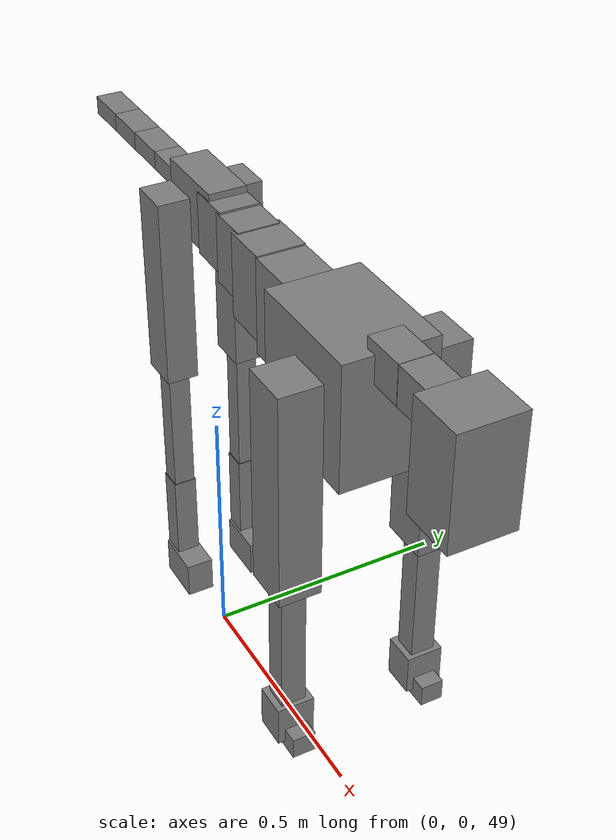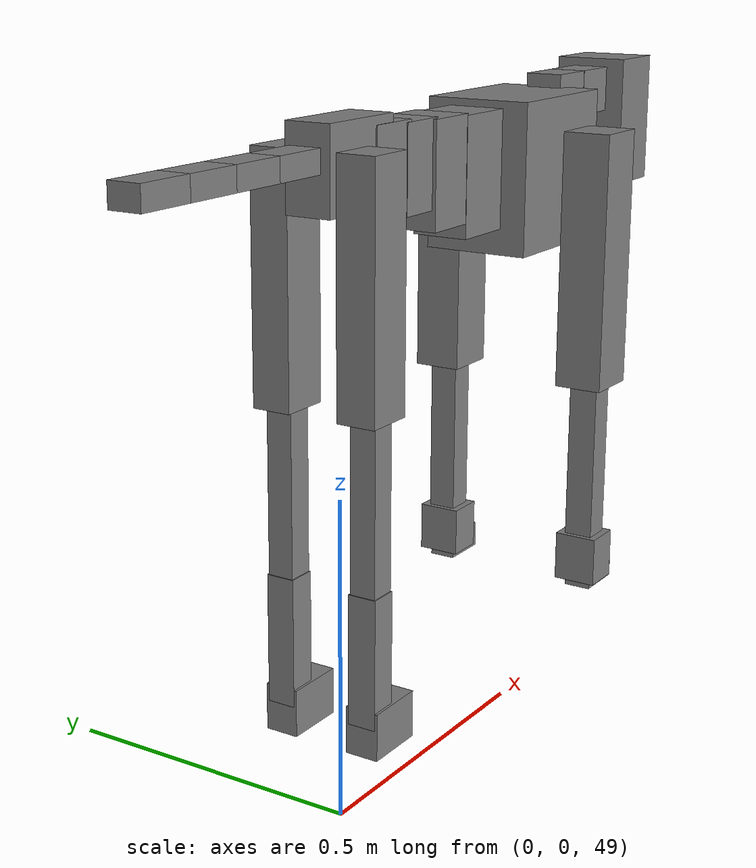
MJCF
<mujoco model="dog">

    <default>
        <joint armature="0.02" stiffness="1" damping="0.2" limited="true"/>
        <geom condim="3" friction="1 0.05 0.05" margin="0.01"/>
        <motor ctrllimited="true" ctrlrange="-1.0 1.0" forcelimited="true" gear="50"/>
    </default>

    <compiler inertiafromgeom="true" angle="radian"/>

    <option timestep="0.016" iterations="50" tolerance="1e-10" solver="Newton" jacobian="dense" cone="pyramidal"/>

    <size nconmax="20000" njmax="60000" nstack="5000000"/>
    <visual>
        <map force="0.1" zfar="30"/>
        <rgba haze="0.15 0.25 0.35 1"/>
        <quality shadowsize="2048"/>
        <global offwidth="800" offheight="800"/>
    </visual>

    <asset>
        <texture type="skybox" builtin="gradient" rgb1="0.3 0.5 0.7" rgb2="0 0 0" width="512" height="512"/>
        <texture name="texplane" type="2d" builtin="checker" rgb1=".2 .3 .4" rgb2=".1 0.15 0.2" width="512" height="512"
                 mark="cross" markrgb=".8 .8 .8"/>
        <texture name="texgeom" type="cube" builtin="flat" mark="cross" width="127" height="1278" rgb1="0.8 0.6 0.4"
                 rgb2="0.8 0.6 0.4" markrgb="1 1 1" random="0.01"/>

        <material name="matplane" reflectance="0.3" texture="texplane" texrepeat="1 1" texuniform="true"/>
        <material name="matgeom" texture="texgeom" texuniform="true" rgba="0.8 0.6 .4 1"/>
    </asset>

    <worldbody>
        <geom name="floor" pos="0 0 0" size="0 0 .25" type="plane" material="matplane" condim="3"/>

        <light directional="false" diffuse=".2 .2 .2" specular="0 0 0" pos="0 0 5" dir="0 0 -1" castshadow="false"/>
        <light mode="targetbodycom" target="torso" directional="false" diffuse=".8 .8 .8" specular="0.3 0.3 0.3"
               pos="0 0 4.0" dir="0 0 -1"/>

        <body name="root" pos="0 0 50">
            <freejoint name="root_1"/>
            <geom type="box" pos="0 0 -0.02" size="0.0774  0.0358  0.063" density="2030"/>

            <body name="spine1" pos="0.054 0 0">
                <joint name="spine1_y" axis="0 1 0" range="0 0.7" limited="true"/>
                <geom type="box" pos="0.02375 0 -0.03" size="0.04375  0.0375  0.05985" density="2030"/>

                <body name="spine2" pos="0.0612 0 0">
                    <joint name="spine2_y" axis="0 1 0" range="-0.15 0.15" limited="true"/>
                    <geom type="box" pos="0.03555  0  -0.04" size="0.04055  0.039  0.06615" density="2030"/>

                    <body name="spine3" pos="0.0730 0 0">
                        <joint name="spine3_y" axis="0 1 0" range="-0.15 0.15" limited="true"/>
                        <geom type="box" pos="0.03555  0  -0.057" size="0.04555  0.0445  0.081" density="2030"/>

                        <body name="spine4" pos="0.0780 0 0">
                            <joint name="spine4_y" axis="0 1 0" range="-0.15 0.15" limited="true"/>
                            <geom type="box" pos="0.05265  0  -0.07" size="0.05265  0.045  0.09135" density="2030"/>

                            <body name="torso" pos="0.1082 0 0">
                                <joint name="torso_y" axis="0 1 0" range="-0.15 0.15" limited="true"/>
                                <geom type="box" pos="0.11925  0  -0.085" size="0.11925  0.085  0.11745"
                                      density="2030"/>

                                <body name="neck1" pos="0.2160  0   0.0180">
                                    <joint name="neck1_y" axis="0 1 0" range="-1.2  -1" limited="true"/>
                                    <geom type="box" pos="0.0423  0  0" size="0.0423  0.03  0.036" density="2325"/>

                                    <body name="neck2" pos="0.0853  0  0">
                                        <joint name="neck2_y" axis="0 1 0" range="0.1  0" limited="true"/>
                                        <geom type="box" pos="0.0423  0  0" size="0.0423  0.03  0.036" density="2325"/>

                                        <body name="head" pos="0.0853  0  0">
                                            <joint name="head_y" axis="0 1 0" range="-0.3  -0.2" limited="true"/>
                                            <geom type="box" pos="0.0531  0  -0.055" size="0.0531  0.06  0.1044"
                                                  density="4030"/>

                                        </body>
                                    </body>
                                </body>

                                <body name="front_shoulder" pos="0.156  0   -0.0480">
                                    <joint name="front_shoulder_y" axis="0 1 0" range="-1 1.5" limited="true"/>
                                    <geom type="box" pos="0 0.13 -0.1771" size="0.0451  0.0385  0.2037" density="1158"/>
                                    <geom type="box" pos="0 -0.13 -0.1771" size="0.0451  0.0385  0.2037"
                                          density="1158"/>

                                    <body name="front_elbow" pos="0  0  -0.3541">
                                        <joint name="front_elbow_y" axis="0 1 0" range="-2 0" limited="true"/>
                                        <geom type="box" pos="0 0.13 -0.1472" size="0.0223  0.0228  0.1472"
                                              density="1081"/>
                                        <geom type="box" pos="0 -0.13 -0.1472" size="0.0223  0.0228  0.1472"
                                              density="1081"/>

                                        <body name="front_wrist" pos="0  0  -0.2945">
                                            <joint name="front_wrist_y" axis="0 1 0" range="-0.2 0" limited="true"/>
                                            <geom type="box" pos="0 0.13 -0.0262" size="0.0310  0.0345  0.0393"
                                                  density="1664"/>
                                            <geom type="box" pos="0 -0.13 -0.0262" size="0.0310  0.0345  0.0393"
                                                  density="1664"/>

                                            <body name="front_finger_end" pos="0  0  -0.0523">
                                                <joint name="front_finger_y" axis="0 1 0" range="-0.4 1"
                                                       limited="true"/>
                                                <geom type="box" pos="0.0214  0.13  -0.0059"
                                                      size="0.0393  0.0214  0.0209" density="1515"/>
                                                <geom type="box" pos="0.0214  -0.13  -0.0059"
                                                      size="0.0393  0.0214  0.0209" density="1515"/>

                                            </body>

                                        </body>
                                    </body>
                                </body>

                            </body>
                        </body>
                    </body>
                </body>
            </body>

            <body name="back_hip" pos="-0.03 0 -0.018">
                <joint name="back_hip_y" axis="0 1 0" range="-1.5 0.3" limited="true"/>
                <geom type="box" pos="0 0.07 -0.1610" size="0.0388  0.0304  0.1838" density="1154"/>
                <geom type="box" pos="0 -0.07 -0.1610" size="0.0388  0.0304  0.1838" density="1154"/>

                <body name="back_knee" pos="0  0  -0.3220">
                    <joint name="back_knee_y" axis="0 1 0" range="0 2.8" limited="true"/>
                    <geom type="box" pos="0 0.07 -0.1433" size="0.0207  0.0204  0.1589" density="1227"/>
                    <geom type="box" pos="0 -0.07 -0.1433" size="0.0207  0.0204  0.1589" density="1227"/>

                    <body name="back_ankle" pos="0  0  -0.2867">
                        <joint name="back_ankle_y" axis="0 1 0" range="-2.2 0" limited="true"/>
                        <geom type="box" pos="0 0.07 -0.0884" size="0.0223  0.0223  0.0996" density="1284"/>
                        <geom type="box" pos="0 -0.07 -0.0884" size="0.0223  0.0223  0.0996" density="1284"/>

                        <body name="back_toe_end" pos="0  0  -0.1767">
                            <joint name="back_toe_y" axis="0 1 0" range="-0.4 1" limited="true"/>
                            <geom type="box" pos="0.0263  0.07  -0.0213" size="0.0483  0.0263  0.0363" density="1515"/>
                            <geom type="box" pos="0.0263  -0.07  -0.0213" size="0.0483  0.0263  0.0363" density="1515"/>

                        </body>
                    </body>
                </body>
            </body>

            <body name="tail1" pos="-0.074 0 -0.006">
                <joint name="tail1_y" axis="0 1 0" range="-0.2 0.2" limited="true"/>
                <geom type="box" pos="-0.0536  0  0" size="0.045  0.025  0.0175" density="1587"/>

                <body name="tail2" pos="-0.09 0 0">
                    <joint name="tail2_y" axis="0 1 0" range="-0.2 0.2" limited="true"/>
                    <geom type="box" pos="-0.0536  0  0" size="0.045  0.025  0.0175" density="1587"/>

                    <body name="tail3" pos="-0.09 0 0">
                        <joint name="tail3_y" axis="0 1 0" range="-0.2 0.2" limited="true"/>
                        <geom type="box" pos="-0.0536  0  0" size="0.045  0.025  0.0175" density="1587"/>

                        <body name="tail4" pos="-0.09 0 0">
                            <joint name="tail4_y" axis="0 1 0" range="-0.2 0.2" limited="true"/>
                            <geom type="box" pos="-0.0536  0  0" size="0.045  0.025  0.0175" density="1587"/>

                        </body>
                    </body>
                </body>
            </body>
        </body>
    </worldbody>

    <actuator>
        <motor joint="spine1_y" forcerange="-150 150     "/>
        <motor joint="spine2_y" forcerange="-150 150     "/>
        <motor joint="spine3_y" forcerange="-150 150     "/>
        <motor joint="spine4_y" forcerange="-150 150     "/>
        <motor joint="torso_y" forcerange="-150 150     "/>
        <motor joint="neck1_y" forcerange="-100 100       "/>
        <motor joint="neck2_y" forcerange="-100 100       "/>
        <motor joint="head_y" forcerange="-150 150       "/>
        <motor joint="front_shoulder_y" forcerange="-191.91 164.87"/>
        <motor joint="front_elbow_y" forcerange="-142.45 123.36"/>
        <motor joint="front_wrist_y" forcerange="-147.83 128.00"/>
        <motor joint="front_finger_y" forcerange="-31.53 42.81"/>
        <motor joint="back_hip_y" forcerange="-306.09 299.16"/>
        <motor joint="back_knee_y" forcerange="-273.50 222.61"/>
        <motor joint="back_angle_y" forcerange="-170.98 85.76"/>
        <motor joint="back_toe_y" forcerange="-22.15 108.55"/>
        <motor joint="tail1_y" forcerange="-50 50     "/>
        <motor joint="tail2_y" forcerange="-50 50     "/>
        <motor joint="tail3_y" forcerange="-50 50     "/>
        <motor joint="tail4_y" forcerange="-50 50     "/>
    </actuator>
</mujoco>
